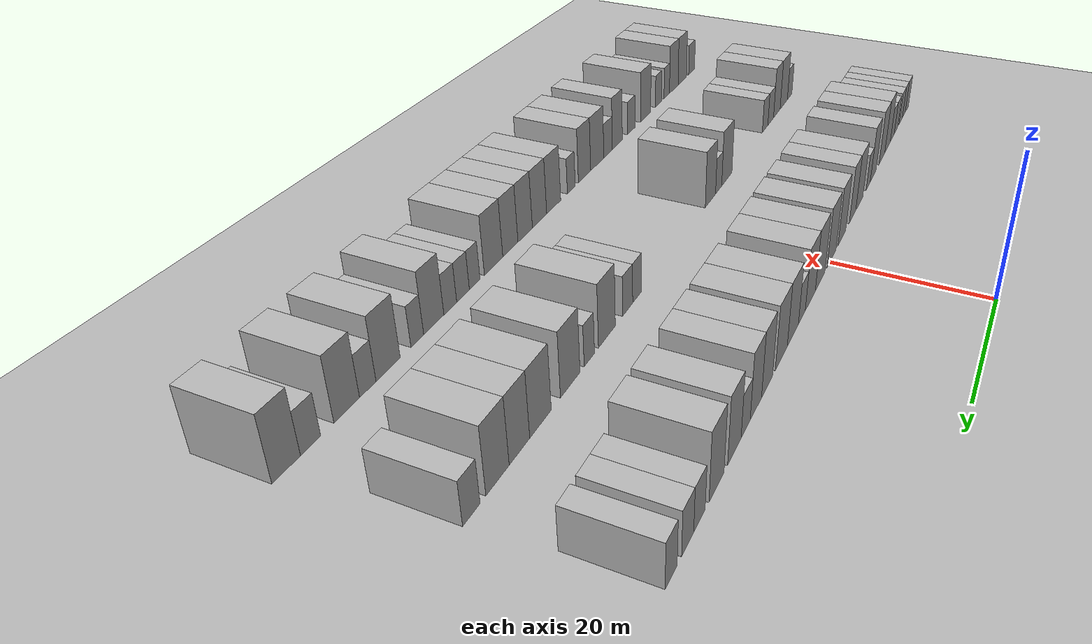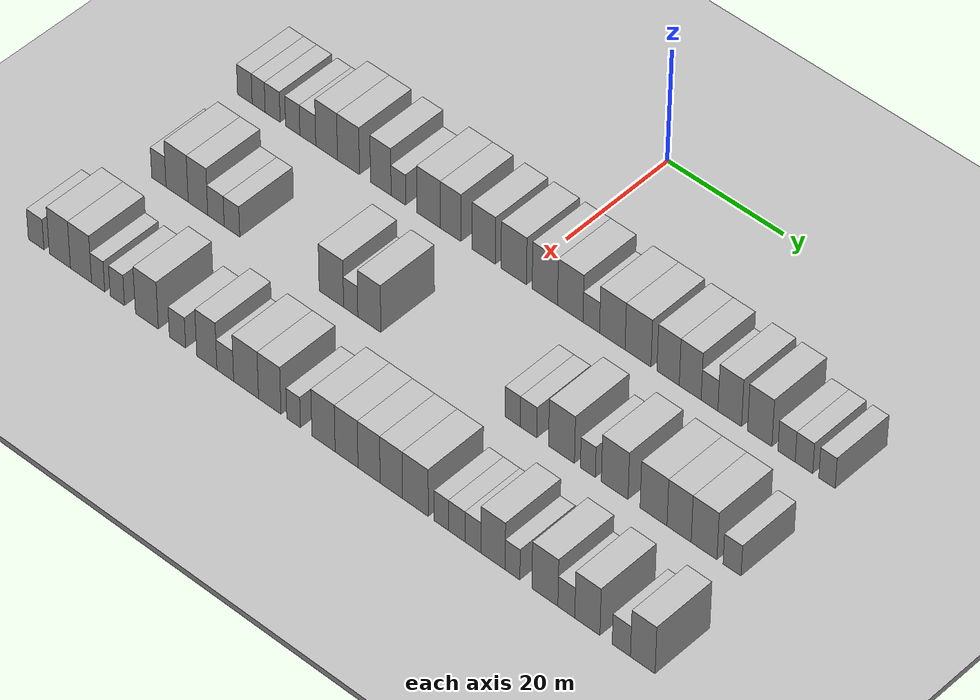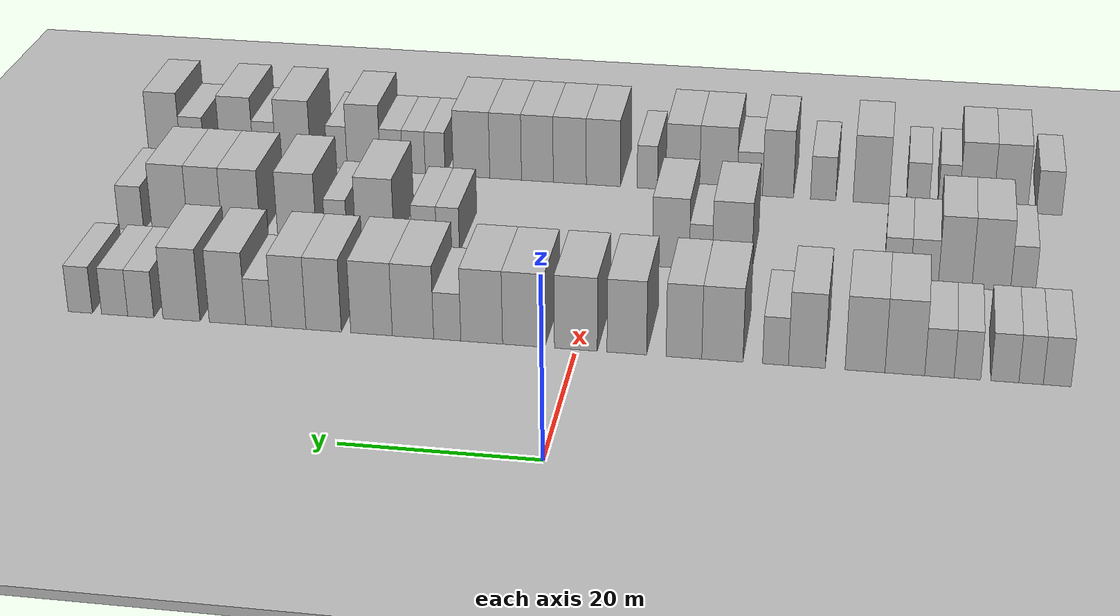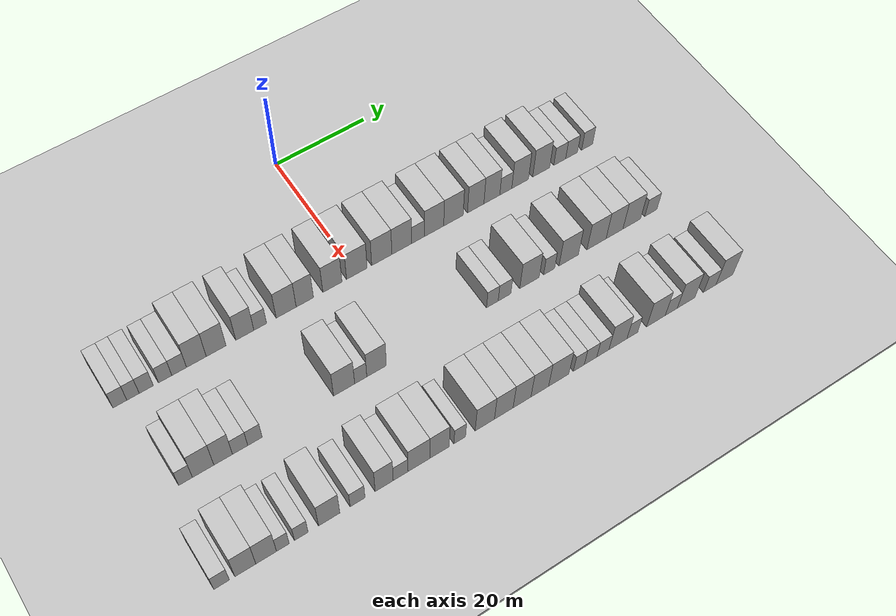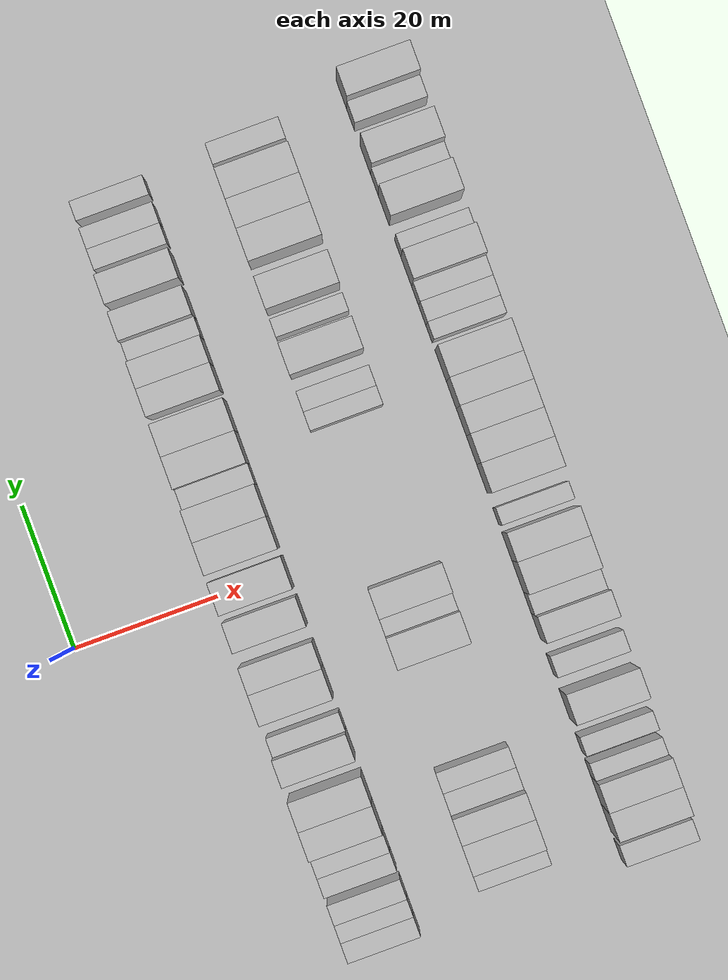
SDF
<sdf version="1.6">
 <world name="default">
  <include><name>ground_plane_1</name><uri>model://HANNAS_ground_plane</uri></include>
  <include>
   <name>ground_plane_2</name>
   <uri>model://HANNAS_ground_plane</uri>
   <pose>100 0 0  0 0 0</pose>
  </include>
  <model name="building_52">
   <static>1</static>
   <pose>25.0000 -48.6462 0 0.000000 0.000000 0.000000</pose>
   <link name="link">
    <pose>0 0 3.00 0 0 0</pose>
    <collision name="collision"><geometry><box><size>10.0000 2.7351 6.0000</size></box></geometry></collision>
    <visual name="visual">
     <cast_shadows>0</cast_shadows>
     <geometry><box><size>10.0000 2.7351 6.0000</size></box></geometry>
     <material>
      <script>
       <uri>model://HANNAS_wall/materials/scripts</uri>
       <uri>model://HANNAS_wall/materials/textures</uri>
       <name>vrc/HANNAS_wall</name>
      </script>
     </material>
    </visual>
   </link>
  </model>
  <model name="building_53">
   <static>1</static>
   <pose>25.0000 -46.0753 0 0.000000 0.000000 0.000000</pose>
   <link name="link">
    <pose>0 0 3.00 0 0 0</pose>
    <collision name="collision"><geometry><box><size>10.0000 2.4067 6.0000</size></box></geometry></collision>
    <visual name="visual">
     <cast_shadows>0</cast_shadows>
     <geometry><box><size>10.0000 2.4067 6.0000</size></box></geometry>
     <material>
      <script>
       <uri>model://HANNAS_wall/materials/scripts</uri>
       <uri>model://HANNAS_wall/materials/textures</uri>
       <name>vrc/HANNAS_wall</name>
      </script>
     </material>
    </visual>
   </link>
  </model>
  <model name="building_54">
   <static>1</static>
   <pose>25.0000 -43.4868 0 0.000000 0.000000 0.000000</pose>
   <link name="link">
    <pose>0 0 3.00 0 0 0</pose>
    <collision name="collision"><geometry><box><size>10.0000 2.7703 6.0000</size></box></geometry></collision>
    <visual name="visual">
     <cast_shadows>0</cast_shadows>
     <geometry><box><size>10.0000 2.7703 6.0000</size></box></geometry>
     <material>
      <script>
       <uri>model://HANNAS_wall/materials/scripts</uri>
       <uri>model://HANNAS_wall/materials/textures</uri>
       <name>vrc/HANNAS_wall</name>
      </script>
     </material>
    </visual>
   </link>
  </model>
  <model name="building_55">
   <static>1</static>
   <pose>25.0000 -39.7792 0 0.000000 0.000000 0.000000</pose>
   <link name="link">
    <pose>0 0 3.00 0 0 0</pose>
    <collision name="collision"><geometry><box><size>10.0000 2.6449 6.0000</size></box></geometry></collision>
    <visual name="visual">
     <cast_shadows>0</cast_shadows>
     <geometry><box><size>10.0000 2.6449 6.0000</size></box></geometry>
     <material>
      <script>
       <uri>model://HANNAS_wall/materials/scripts</uri>
       <uri>model://HANNAS_wall/materials/textures</uri>
       <name>vrc/HANNAS_wall</name>
      </script>
     </material>
    </visual>
   </link>
  </model>
  <model name="building_56">
   <static>1</static>
   <pose>25.0000 -36.9956 0 0.000000 0.000000 0.000000</pose>
   <link name="link">
    <pose>0 0 3.00 0 0 0</pose>
    <collision name="collision"><geometry><box><size>10.0000 2.9223 6.0000</size></box></geometry></collision>
    <visual name="visual">
     <cast_shadows>0</cast_shadows>
     <geometry><box><size>10.0000 2.9223 6.0000</size></box></geometry>
     <material>
      <script>
       <uri>model://HANNAS_wall/materials/scripts</uri>
       <uri>model://HANNAS_wall/materials/textures</uri>
       <name>vrc/HANNAS_wall</name>
      </script>
     </material>
    </visual>
   </link>
  </model>
  <model name="building_57">
   <static>1</static>
   <pose>25.0000 -33.5493 0 0.000000 0.000000 0.000000</pose>
   <link name="link">
    <pose>0 0 4.50 0 0 0</pose>
    <collision name="collision"><geometry><box><size>10.0000 3.9704 9.0000</size></box></geometry></collision>
    <visual name="visual">
     <cast_shadows>0</cast_shadows>
     <geometry><box><size>10.0000 3.9704 9.0000</size></box></geometry>
     <material>
      <script>
       <uri>model://HANNAS_wall/materials/scripts</uri>
       <uri>model://HANNAS_wall/materials/textures</uri>
       <name>vrc/HANNAS_wall</name>
      </script>
     </material>
    </visual>
   </link>
  </model>
  <model name="building_58">
   <static>1</static>
   <pose>25.0000 -29.5604 0 0.000000 0.000000 0.000000</pose>
   <link name="link">
    <pose>0 0 4.50 0 0 0</pose>
    <collision name="collision"><geometry><box><size>10.0000 4.0074 9.0000</size></box></geometry></collision>
    <visual name="visual">
     <cast_shadows>0</cast_shadows>
     <geometry><box><size>10.0000 4.0074 9.0000</size></box></geometry>
     <material>
      <script>
       <uri>model://HANNAS_wall/materials/scripts</uri>
       <uri>model://HANNAS_wall/materials/textures</uri>
       <name>vrc/HANNAS_wall</name>
      </script>
     </material>
    </visual>
   </link>
  </model>
  <model name="building_59">
   <static>1</static>
   <pose>25.0000 -23.6987 0 0.000000 0.000000 0.000000</pose>
   <link name="link">
    <pose>0 0 4.50 0 0 0</pose>
    <collision name="collision"><geometry><box><size>10.0000 3.7161 9.0000</size></box></geometry></collision>
    <visual name="visual">
     <cast_shadows>0</cast_shadows>
     <geometry><box><size>10.0000 3.7161 9.0000</size></box></geometry>
     <material>
      <script>
       <uri>model://HANNAS_wall/materials/scripts</uri>
       <uri>model://HANNAS_wall/materials/textures</uri>
       <name>vrc/HANNAS_wall</name>
      </script>
     </material>
    </visual>
   </link>
  </model>
  <model name="building_60">
   <static>1</static>
   <pose>25.0000 -20.5295 0 0.000000 0.000000 0.000000</pose>
   <link name="link">
    <pose>0 0 3.00 0 0 0</pose>
    <collision name="collision"><geometry><box><size>10.0000 2.6221 6.0000</size></box></geometry></collision>
    <visual name="visual">
     <cast_shadows>0</cast_shadows>
     <geometry><box><size>10.0000 2.6221 6.0000</size></box></geometry>
     <material>
      <script>
       <uri>model://HANNAS_wall/materials/scripts</uri>
       <uri>model://HANNAS_wall/materials/textures</uri>
       <name>vrc/HANNAS_wall</name>
      </script>
     </material>
    </visual>
   </link>
  </model>
  <model name="building_61">
   <static>1</static>
   <pose>25.0000 -15.1190 0 0.000000 0.000000 0.000000</pose>
   <link name="link">
    <pose>0 0 4.50 0 0 0</pose>
    <collision name="collision"><geometry><box><size>10.0000 4.1989 9.0000</size></box></geometry></collision>
    <visual name="visual">
     <cast_shadows>0</cast_shadows>
     <geometry><box><size>10.0000 4.1989 9.0000</size></box></geometry>
     <material>
      <script>
       <uri>model://HANNAS_wall/materials/scripts</uri>
       <uri>model://HANNAS_wall/materials/textures</uri>
       <name>vrc/HANNAS_wall</name>
      </script>
     </material>
    </visual>
   </link>
  </model>
  <model name="building_62">
   <static>1</static>
   <pose>25.0000 -11.1904 0 0.000000 0.000000 0.000000</pose>
   <link name="link">
    <pose>0 0 4.50 0 0 0</pose>
    <collision name="collision"><geometry><box><size>10.0000 3.6582 9.0000</size></box></geometry></collision>
    <visual name="visual">
     <cast_shadows>0</cast_shadows>
     <geometry><box><size>10.0000 3.6582 9.0000</size></box></geometry>
     <material>
      <script>
       <uri>model://HANNAS_wall/materials/scripts</uri>
       <uri>model://HANNAS_wall/materials/textures</uri>
       <name>vrc/HANNAS_wall</name>
      </script>
     </material>
    </visual>
   </link>
  </model>
  <model name="building_63">
   <static>1</static>
   <pose>25.0000 -5.3148 0 0.000000 0.000000 0.000000</pose>
   <link name="link">
    <pose>0 0 4.50 0 0 0</pose>
    <collision name="collision"><geometry><box><size>10.0000 4.0931 9.0000</size></box></geometry></collision>
    <visual name="visual">
     <cast_shadows>0</cast_shadows>
     <geometry><box><size>10.0000 4.0931 9.0000</size></box></geometry>
     <material>
      <script>
       <uri>model://HANNAS_wall/materials/scripts</uri>
       <uri>model://HANNAS_wall/materials/textures</uri>
       <name>vrc/HANNAS_wall</name>
      </script>
     </material>
    </visual>
   </link>
  </model>
  <model name="building_64">
   <static>1</static>
   <pose>25.0000 -0.0425 0 0.000000 0.000000 0.000000</pose>
   <link name="link">
    <pose>0 0 4.50 0 0 0</pose>
    <collision name="collision"><geometry><box><size>10.0000 4.4515 9.0000</size></box></geometry></collision>
    <visual name="visual">
     <cast_shadows>0</cast_shadows>
     <geometry><box><size>10.0000 4.4515 9.0000</size></box></geometry>
     <material>
      <script>
       <uri>model://HANNAS_wall/materials/scripts</uri>
       <uri>model://HANNAS_wall/materials/textures</uri>
       <name>vrc/HANNAS_wall</name>
      </script>
     </material>
    </visual>
   </link>
  </model>
  <model name="building_65">
   <static>1</static>
   <pose>25.0000 5.3926 0 0.000000 0.000000 0.000000</pose>
   <link name="link">
    <pose>0 0 4.50 0 0 0</pose>
    <collision name="collision"><geometry><box><size>10.0000 4.4188 9.0000</size></box></geometry></collision>
    <visual name="visual">
     <cast_shadows>0</cast_shadows>
     <geometry><box><size>10.0000 4.4188 9.0000</size></box></geometry>
     <material>
      <script>
       <uri>model://HANNAS_wall/materials/scripts</uri>
       <uri>model://HANNAS_wall/materials/textures</uri>
       <name>vrc/HANNAS_wall</name>
      </script>
     </material>
    </visual>
   </link>
  </model>
  <model name="building_66">
   <static>1</static>
   <pose>25.0000 9.7948 0 0.000000 0.000000 0.000000</pose>
   <link name="link">
    <pose>0 0 4.50 0 0 0</pose>
    <collision name="collision"><geometry><box><size>10.0000 4.3856 9.0000</size></box></geometry></collision>
    <visual name="visual">
     <cast_shadows>0</cast_shadows>
     <geometry><box><size>10.0000 4.3856 9.0000</size></box></geometry>
     <material>
      <script>
       <uri>model://HANNAS_wall/materials/scripts</uri>
       <uri>model://HANNAS_wall/materials/textures</uri>
       <name>vrc/HANNAS_wall</name>
      </script>
     </material>
    </visual>
   </link>
  </model>
  <model name="building_67">
   <static>1</static>
   <pose>25.0000 13.4196 0 0.000000 0.000000 0.000000</pose>
   <link name="link">
    <pose>0 0 3.00 0 0 0</pose>
    <collision name="collision"><geometry><box><size>10.0000 2.8640 6.0000</size></box></geometry></collision>
    <visual name="visual">
     <cast_shadows>0</cast_shadows>
     <geometry><box><size>10.0000 2.8640 6.0000</size></box></geometry>
     <material>
      <script>
       <uri>model://HANNAS_wall/materials/scripts</uri>
       <uri>model://HANNAS_wall/materials/textures</uri>
       <name>vrc/HANNAS_wall</name>
      </script>
     </material>
    </visual>
   </link>
  </model>
  <model name="building_68">
   <static>1</static>
   <pose>25.0000 17.0380 0 0.000000 0.000000 0.000000</pose>
   <link name="link">
    <pose>0 0 4.50 0 0 0</pose>
    <collision name="collision"><geometry><box><size>10.0000 4.3727 9.0000</size></box></geometry></collision>
    <visual name="visual">
     <cast_shadows>0</cast_shadows>
     <geometry><box><size>10.0000 4.3727 9.0000</size></box></geometry>
     <material>
      <script>
       <uri>model://HANNAS_wall/materials/scripts</uri>
       <uri>model://HANNAS_wall/materials/textures</uri>
       <name>vrc/HANNAS_wall</name>
      </script>
     </material>
    </visual>
   </link>
  </model>
  <model name="building_69">
   <static>1</static>
   <pose>25.0000 21.4392 0 0.000000 0.000000 0.000000</pose>
   <link name="link">
    <pose>0 0 4.50 0 0 0</pose>
    <collision name="collision"><geometry><box><size>10.0000 4.4298 9.0000</size></box></geometry></collision>
    <visual name="visual">
     <cast_shadows>0</cast_shadows>
     <geometry><box><size>10.0000 4.4298 9.0000</size></box></geometry>
     <material>
      <script>
       <uri>model://HANNAS_wall/materials/scripts</uri>
       <uri>model://HANNAS_wall/materials/textures</uri>
       <name>vrc/HANNAS_wall</name>
      </script>
     </material>
    </visual>
   </link>
  </model>
  <model name="building_70">
   <static>1</static>
   <pose>25.0000 26.5454 0 0.000000 0.000000 0.000000</pose>
   <link name="link">
    <pose>0 0 4.50 0 0 0</pose>
    <collision name="collision"><geometry><box><size>10.0000 3.7825 9.0000</size></box></geometry></collision>
    <visual name="visual">
     <cast_shadows>0</cast_shadows>
     <geometry><box><size>10.0000 3.7825 9.0000</size></box></geometry>
     <material>
      <script>
       <uri>model://HANNAS_wall/materials/scripts</uri>
       <uri>model://HANNAS_wall/materials/textures</uri>
       <name>vrc/HANNAS_wall</name>
      </script>
     </material>
    </visual>
   </link>
  </model>
  <model name="building_71">
   <static>1</static>
   <pose>25.0000 30.2810 0 0.000000 0.000000 0.000000</pose>
   <link name="link">
    <pose>0 0 4.50 0 0 0</pose>
    <collision name="collision"><geometry><box><size>10.0000 3.6888 9.0000</size></box></geometry></collision>
    <visual name="visual">
     <cast_shadows>0</cast_shadows>
     <geometry><box><size>10.0000 3.6888 9.0000</size></box></geometry>
     <material>
      <script>
       <uri>model://HANNAS_wall/materials/scripts</uri>
       <uri>model://HANNAS_wall/materials/textures</uri>
       <name>vrc/HANNAS_wall</name>
      </script>
     </material>
    </visual>
   </link>
  </model>
  <model name="building_72">
   <static>1</static>
   <pose>25.0000 33.5298 0 0.000000 0.000000 0.000000</pose>
   <link name="link">
    <pose>0 0 3.00 0 0 0</pose>
    <collision name="collision"><geometry><box><size>10.0000 2.8089 6.0000</size></box></geometry></collision>
    <visual name="visual">
     <cast_shadows>0</cast_shadows>
     <geometry><box><size>10.0000 2.8089 6.0000</size></box></geometry>
     <material>
      <script>
       <uri>model://HANNAS_wall/materials/scripts</uri>
       <uri>model://HANNAS_wall/materials/textures</uri>
       <name>vrc/HANNAS_wall</name>
      </script>
     </material>
    </visual>
   </link>
  </model>
  <model name="building_73">
   <static>1</static>
   <pose>25.0000 36.9050 0 0.000000 0.000000 0.000000</pose>
   <link name="link">
    <pose>0 0 4.50 0 0 0</pose>
    <collision name="collision"><geometry><box><size>10.0000 3.9414 9.0000</size></box></geometry></collision>
    <visual name="visual">
     <cast_shadows>0</cast_shadows>
     <geometry><box><size>10.0000 3.9414 9.0000</size></box></geometry>
     <material>
      <script>
       <uri>model://HANNAS_wall/materials/scripts</uri>
       <uri>model://HANNAS_wall/materials/textures</uri>
       <name>vrc/HANNAS_wall</name>
      </script>
     </material>
    </visual>
   </link>
  </model>
  <model name="building_74">
   <static>1</static>
   <pose>25.0000 41.8972 0 0.000000 0.000000 0.000000</pose>
   <link name="link">
    <pose>0 0 4.50 0 0 0</pose>
    <collision name="collision"><geometry><box><size>10.0000 4.0429 9.0000</size></box></geometry></collision>
    <visual name="visual">
     <cast_shadows>0</cast_shadows>
     <geometry><box><size>10.0000 4.0429 9.0000</size></box></geometry>
     <material>
      <script>
       <uri>model://HANNAS_wall/materials/scripts</uri>
       <uri>model://HANNAS_wall/materials/textures</uri>
       <name>vrc/HANNAS_wall</name>
      </script>
     </material>
    </visual>
   </link>
  </model>
  <model name="building_75">
   <static>1</static>
   <pose>25.0000 46.3423 0 0.000000 0.000000 0.000000</pose>
   <link name="link">
    <pose>0 0 3.00 0 0 0</pose>
    <collision name="collision"><geometry><box><size>10.0000 2.8474 6.0000</size></box></geometry></collision>
    <visual name="visual">
     <cast_shadows>0</cast_shadows>
     <geometry><box><size>10.0000 2.8474 6.0000</size></box></geometry>
     <material>
      <script>
       <uri>model://HANNAS_wall/materials/scripts</uri>
       <uri>model://HANNAS_wall/materials/textures</uri>
       <name>vrc/HANNAS_wall</name>
      </script>
     </material>
    </visual>
   </link>
  </model>
  <model name="building_76">
   <static>1</static>
   <pose>25.0000 49.2047 0 0.000000 0.000000 0.000000</pose>
   <link name="link">
    <pose>0 0 3.00 0 0 0</pose>
    <collision name="collision"><geometry><box><size>10.0000 2.8776 6.0000</size></box></geometry></collision>
    <visual name="visual">
     <cast_shadows>0</cast_shadows>
     <geometry><box><size>10.0000 2.8776 6.0000</size></box></geometry>
     <material>
      <script>
       <uri>model://HANNAS_wall/materials/scripts</uri>
       <uri>model://HANNAS_wall/materials/textures</uri>
       <name>vrc/HANNAS_wall</name>
      </script>
     </material>
    </visual>
   </link>
  </model>
  <model name="building_77">
   <static>1</static>
   <pose>25.0000 52.9782 0 0.000000 0.000000 0.000000</pose>
   <link name="link">
    <pose>0 0 3.00 0 0 0</pose>
    <collision name="collision"><geometry><box><size>10.0000 2.6694 6.0000</size></box></geometry></collision>
    <visual name="visual">
     <cast_shadows>0</cast_shadows>
     <geometry><box><size>10.0000 2.6694 6.0000</size></box></geometry>
     <material>
      <script>
       <uri>model://HANNAS_wall/materials/scripts</uri>
       <uri>model://HANNAS_wall/materials/textures</uri>
       <name>vrc/HANNAS_wall</name>
      </script>
     </material>
    </visual>
   </link>
  </model>
  <model name="building_170">
   <static>1</static>
   <pose>44.0000 -45.7778 0 0.000000 0.000000 0.000000</pose>
   <link name="link">
    <pose>0 0 3.00 0 0 0</pose>
    <collision name="collision"><geometry><box><size>10.0000 2.6473 6.0000</size></box></geometry></collision>
    <visual name="visual">
     <cast_shadows>0</cast_shadows>
     <geometry><box><size>10.0000 2.6473 6.0000</size></box></geometry>
     <material>
      <script>
       <uri>model://HANNAS_wall/materials/scripts</uri>
       <uri>model://HANNAS_wall/materials/textures</uri>
       <name>vrc/HANNAS_wall</name>
      </script>
     </material>
    </visual>
   </link>
  </model>
  <model name="building_171">
   <static>1</static>
   <pose>44.0000 -42.3983 0 0.000000 0.000000 0.000000</pose>
   <link name="link">
    <pose>0 0 4.50 0 0 0</pose>
    <collision name="collision"><geometry><box><size>10.0000 4.1117 9.0000</size></box></geometry></collision>
    <visual name="visual">
     <cast_shadows>0</cast_shadows>
     <geometry><box><size>10.0000 4.1117 9.0000</size></box></geometry>
     <material>
      <script>
       <uri>model://HANNAS_wall/materials/scripts</uri>
       <uri>model://HANNAS_wall/materials/textures</uri>
       <name>vrc/HANNAS_wall</name>
      </script>
     </material>
    </visual>
   </link>
  </model>
  <model name="building_172">
   <static>1</static>
   <pose>44.0000 -38.5413 0 0.000000 0.000000 0.000000</pose>
   <link name="link">
    <pose>0 0 4.50 0 0 0</pose>
    <collision name="collision"><geometry><box><size>10.0000 3.6022 9.0000</size></box></geometry></collision>
    <visual name="visual">
     <cast_shadows>0</cast_shadows>
     <geometry><box><size>10.0000 3.6022 9.0000</size></box></geometry>
     <material>
      <script>
       <uri>model://HANNAS_wall/materials/scripts</uri>
       <uri>model://HANNAS_wall/materials/textures</uri>
       <name>vrc/HANNAS_wall</name>
      </script>
     </material>
    </visual>
   </link>
  </model>
  <model name="building_173">
   <static>1</static>
   <pose>44.0000 -35.2444 0 0.000000 0.000000 0.000000</pose>
   <link name="link">
    <pose>0 0 3.00 0 0 0</pose>
    <collision name="collision"><geometry><box><size>10.0000 2.9916 6.0000</size></box></geometry></collision>
    <visual name="visual">
     <cast_shadows>0</cast_shadows>
     <geometry><box><size>10.0000 2.9916 6.0000</size></box></geometry>
     <material>
      <script>
       <uri>model://HANNAS_wall/materials/scripts</uri>
       <uri>model://HANNAS_wall/materials/textures</uri>
       <name>vrc/HANNAS_wall</name>
      </script>
     </material>
    </visual>
   </link>
  </model>
  <model name="building_174">
   <static>1</static>
   <pose>44.0000 -32.3224 0 0.000000 0.000000 0.000000</pose>
   <link name="link">
    <pose>0 0 3.00 0 0 0</pose>
    <collision name="collision"><geometry><box><size>10.0000 2.8525 6.0000</size></box></geometry></collision>
    <visual name="visual">
     <cast_shadows>0</cast_shadows>
     <geometry><box><size>10.0000 2.8525 6.0000</size></box></geometry>
     <material>
      <script>
       <uri>model://HANNAS_wall/materials/scripts</uri>
       <uri>model://HANNAS_wall/materials/textures</uri>
       <name>vrc/HANNAS_wall</name>
      </script>
     </material>
    </visual>
   </link>
  </model>
  <model name="building_175">
   <static>1</static>
   <pose>44.0000 -14.3872 0 0.000000 0.000000 0.000000</pose>
   <link name="link">
    <pose>0 0 4.50 0 0 0</pose>
    <collision name="collision"><geometry><box><size>10.0000 4.3393 9.0000</size></box></geometry></collision>
    <visual name="visual">
     <cast_shadows>0</cast_shadows>
     <geometry><box><size>10.0000 4.3393 9.0000</size></box></geometry>
     <material>
      <script>
       <uri>model://HANNAS_wall/materials/scripts</uri>
       <uri>model://HANNAS_wall/materials/textures</uri>
       <name>vrc/HANNAS_wall</name>
      </script>
     </material>
    </visual>
   </link>
  </model>
  <model name="building_176">
   <static>1</static>
   <pose>44.0000 -10.9563 0 0.000000 0.000000 0.000000</pose>
   <link name="link">
    <pose>0 0 3.00 0 0 0</pose>
    <collision name="collision"><geometry><box><size>10.0000 2.5224 6.0000</size></box></geometry></collision>
    <visual name="visual">
     <cast_shadows>0</cast_shadows>
     <geometry><box><size>10.0000 2.5224 6.0000</size></box></geometry>
     <material>
      <script>
       <uri>model://HANNAS_wall/materials/scripts</uri>
       <uri>model://HANNAS_wall/materials/textures</uri>
       <name>vrc/HANNAS_wall</name>
      </script>
     </material>
    </visual>
   </link>
  </model>
  <model name="building_177">
   <static>1</static>
   <pose>44.0000 -7.6598 0 0.000000 0.000000 0.000000</pose>
   <link name="link">
    <pose>0 0 4.50 0 0 0</pose>
    <collision name="collision"><geometry><box><size>10.0000 4.0707 9.0000</size></box></geometry></collision>
    <visual name="visual">
     <cast_shadows>0</cast_shadows>
     <geometry><box><size>10.0000 4.0707 9.0000</size></box></geometry>
     <material>
      <script>
       <uri>model://HANNAS_wall/materials/scripts</uri>
       <uri>model://HANNAS_wall/materials/textures</uri>
       <name>vrc/HANNAS_wall</name>
      </script>
     </material>
    </visual>
   </link>
  </model>
  <model name="building_178">
   <static>1</static>
   <pose>44.0000 17.2535 0 0.000000 0.000000 0.000000</pose>
   <link name="link">
    <pose>0 0 3.00 0 0 0</pose>
    <collision name="collision"><geometry><box><size>10.0000 2.5852 6.0000</size></box></geometry></collision>
    <visual name="visual">
     <cast_shadows>0</cast_shadows>
     <geometry><box><size>10.0000 2.5852 6.0000</size></box></geometry>
     <material>
      <script>
       <uri>model://HANNAS_wall/materials/scripts</uri>
       <uri>model://HANNAS_wall/materials/textures</uri>
       <name>vrc/HANNAS_wall</name>
      </script>
     </material>
    </visual>
   </link>
  </model>
  <model name="building_179">
   <static>1</static>
   <pose>44.0000 19.9597 0 0.000000 0.000000 0.000000</pose>
   <link name="link">
    <pose>0 0 3.00 0 0 0</pose>
    <collision name="collision"><geometry><box><size>10.0000 2.8272 6.0000</size></box></geometry></collision>
    <visual name="visual">
     <cast_shadows>0</cast_shadows>
     <geometry><box><size>10.0000 2.8272 6.0000</size></box></geometry>
     <material>
      <script>
       <uri>model://HANNAS_wall/materials/scripts</uri>
       <uri>model://HANNAS_wall/materials/textures</uri>
       <name>vrc/HANNAS_wall</name>
      </script>
     </material>
    </visual>
   </link>
  </model>
  <model name="building_180">
   <static>1</static>
   <pose>44.0000 25.5648 0 0.000000 0.000000 0.000000</pose>
   <link name="link">
    <pose>0 0 4.50 0 0 0</pose>
    <collision name="collision"><geometry><box><size>10.0000 4.3829 9.0000</size></box></geometry></collision>
    <visual name="visual">
     <cast_shadows>0</cast_shadows>
     <geometry><box><size>10.0000 4.3829 9.0000</size></box></geometry>
     <material>
      <script>
       <uri>model://HANNAS_wall/materials/scripts</uri>
       <uri>model://HANNAS_wall/materials/textures</uri>
       <name>vrc/HANNAS_wall</name>
      </script>
     </material>
    </visual>
   </link>
  </model>
  <model name="building_181">
   <static>1</static>
   <pose>44.0000 30.0153 0 0.000000 0.000000 0.000000</pose>
   <link name="link">
    <pose>0 0 3.00 0 0 0</pose>
    <collision name="collision"><geometry><box><size>10.0000 2.5182 6.0000</size></box></geometry></collision>
    <visual name="visual">
     <cast_shadows>0</cast_shadows>
     <geometry><box><size>10.0000 2.5182 6.0000</size></box></geometry>
     <material>
      <script>
       <uri>model://HANNAS_wall/materials/scripts</uri>
       <uri>model://HANNAS_wall/materials/textures</uri>
       <name>vrc/HANNAS_wall</name>
      </script>
     </material>
    </visual>
   </link>
  </model>
  <model name="building_182">
   <static>1</static>
   <pose>44.0000 34.5083 0 0.000000 0.000000 0.000000</pose>
   <link name="link">
    <pose>0 0 4.50 0 0 0</pose>
    <collision name="collision"><geometry><box><size>10.0000 4.4677 9.0000</size></box></geometry></collision>
    <visual name="visual">
     <cast_shadows>0</cast_shadows>
     <geometry><box><size>10.0000 4.4677 9.0000</size></box></geometry>
     <material>
      <script>
       <uri>model://HANNAS_wall/materials/scripts</uri>
       <uri>model://HANNAS_wall/materials/textures</uri>
       <name>vrc/HANNAS_wall</name>
      </script>
     </material>
    </visual>
   </link>
  </model>
  <model name="building_183">
   <static>1</static>
   <pose>44.0000 40.9732 0 0.000000 0.000000 0.000000</pose>
   <link name="link">
    <pose>0 0 4.50 0 0 0</pose>
    <collision name="collision"><geometry><box><size>10.0000 4.4620 9.0000</size></box></geometry></collision>
    <visual name="visual">
     <cast_shadows>0</cast_shadows>
     <geometry><box><size>10.0000 4.4620 9.0000</size></box></geometry>
     <material>
      <script>
       <uri>model://HANNAS_wall/materials/scripts</uri>
       <uri>model://HANNAS_wall/materials/textures</uri>
       <name>vrc/HANNAS_wall</name>
      </script>
     </material>
    </visual>
   </link>
  </model>
  <model name="building_184">
   <static>1</static>
   <pose>44.0000 45.1944 0 0.000000 0.000000 0.000000</pose>
   <link name="link">
    <pose>0 0 4.50 0 0 0</pose>
    <collision name="collision"><geometry><box><size>10.0000 3.9804 9.0000</size></box></geometry></collision>
    <visual name="visual">
     <cast_shadows>0</cast_shadows>
     <geometry><box><size>10.0000 3.9804 9.0000</size></box></geometry>
     <material>
      <script>
       <uri>model://HANNAS_wall/materials/scripts</uri>
       <uri>model://HANNAS_wall/materials/textures</uri>
       <name>vrc/HANNAS_wall</name>
      </script>
     </material>
    </visual>
   </link>
  </model>
  <model name="building_185">
   <static>1</static>
   <pose>44.0000 49.2957 0 0.000000 0.000000 0.000000</pose>
   <link name="link">
    <pose>0 0 4.50 0 0 0</pose>
    <collision name="collision"><geometry><box><size>10.0000 4.2222 9.0000</size></box></geometry></collision>
    <visual name="visual">
     <cast_shadows>0</cast_shadows>
     <geometry><box><size>10.0000 4.2222 9.0000</size></box></geometry>
     <material>
      <script>
       <uri>model://HANNAS_wall/materials/scripts</uri>
       <uri>model://HANNAS_wall/materials/textures</uri>
       <name>vrc/HANNAS_wall</name>
      </script>
     </material>
    </visual>
   </link>
  </model>
  <model name="building_186">
   <static>1</static>
   <pose>44.0000 53.8713 0 0.000000 0.000000 0.000000</pose>
   <link name="link">
    <pose>0 0 3.00 0 0 0</pose>
    <collision name="collision"><geometry><box><size>10.0000 2.9292 6.0000</size></box></geometry></collision>
    <visual name="visual">
     <cast_shadows>0</cast_shadows>
     <geometry><box><size>10.0000 2.9292 6.0000</size></box></geometry>
     <material>
      <script>
       <uri>model://HANNAS_wall/materials/scripts</uri>
       <uri>model://HANNAS_wall/materials/textures</uri>
       <name>vrc/HANNAS_wall</name>
      </script>
     </material>
    </visual>
   </link>
  </model>
  <model name="building_277">
   <static>1</static>
   <pose>63.0000 -49.2333 0 0.000000 0.000000 0.000000</pose>
   <link name="link">
    <pose>0 0 3.00 0 0 0</pose>
    <collision name="collision"><geometry><box><size>10.0000 2.9017 6.0000</size></box></geometry></collision>
    <visual name="visual">
     <cast_shadows>0</cast_shadows>
     <geometry><box><size>10.0000 2.9017 6.0000</size></box></geometry>
     <material>
      <script>
       <uri>model://HANNAS_wall/materials/scripts</uri>
       <uri>model://HANNAS_wall/materials/textures</uri>
       <name>vrc/HANNAS_wall</name>
      </script>
     </material>
    </visual>
   </link>
  </model>
  <model name="building_278">
   <static>1</static>
   <pose>63.0000 -44.8301 0 0.000000 0.000000 0.000000</pose>
   <link name="link">
    <pose>0 0 4.50 0 0 0</pose>
    <collision name="collision"><geometry><box><size>10.0000 3.9046 9.0000</size></box></geometry></collision>
    <visual name="visual">
     <cast_shadows>0</cast_shadows>
     <geometry><box><size>10.0000 3.9046 9.0000</size></box></geometry>
     <material>
      <script>
       <uri>model://HANNAS_wall/materials/scripts</uri>
       <uri>model://HANNAS_wall/materials/textures</uri>
       <name>vrc/HANNAS_wall</name>
      </script>
     </material>
    </visual>
   </link>
  </model>
  <model name="building_279">
   <static>1</static>
   <pose>63.0000 -40.9278 0 0.000000 0.000000 0.000000</pose>
   <link name="link">
    <pose>0 0 4.50 0 0 0</pose>
    <collision name="collision"><geometry><box><size>10.0000 3.9001 9.0000</size></box></geometry></collision>
    <visual name="visual">
     <cast_shadows>0</cast_shadows>
     <geometry><box><size>10.0000 3.9001 9.0000</size></box></geometry>
     <material>
      <script>
       <uri>model://HANNAS_wall/materials/scripts</uri>
       <uri>model://HANNAS_wall/materials/textures</uri>
       <name>vrc/HANNAS_wall</name>
      </script>
     </material>
    </visual>
   </link>
  </model>
  <model name="building_280">
   <static>1</static>
   <pose>63.0000 -37.7716 0 0.000000 0.000000 0.000000</pose>
   <link name="link">
    <pose>0 0 3.00 0 0 0</pose>
    <collision name="collision"><geometry><box><size>10.0000 2.4122 6.0000</size></box></geometry></collision>
    <visual name="visual">
     <cast_shadows>0</cast_shadows>
     <geometry><box><size>10.0000 2.4122 6.0000</size></box></geometry>
     <material>
      <script>
       <uri>model://HANNAS_wall/materials/scripts</uri>
       <uri>model://HANNAS_wall/materials/textures</uri>
       <name>vrc/HANNAS_wall</name>
      </script>
     </material>
    </visual>
   </link>
  </model>
  <model name="building_281">
   <static>1</static>
   <pose>63.0000 -34.2584 0 0.000000 0.000000 0.000000</pose>
   <link name="link">
    <pose>0 0 3.00 0 0 0</pose>
    <collision name="collision"><geometry><box><size>10.0000 2.6142 6.0000</size></box></geometry></collision>
    <visual name="visual">
     <cast_shadows>0</cast_shadows>
     <geometry><box><size>10.0000 2.6142 6.0000</size></box></geometry>
     <material>
      <script>
       <uri>model://HANNAS_wall/materials/scripts</uri>
       <uri>model://HANNAS_wall/materials/textures</uri>
       <name>vrc/HANNAS_wall</name>
      </script>
     </material>
    </visual>
   </link>
  </model>
  <model name="building_282">
   <static>1</static>
   <pose>63.0000 -28.8769 0 0.000000 0.000000 0.000000</pose>
   <link name="link">
    <pose>0 0 4.50 0 0 0</pose>
    <collision name="collision"><geometry><box><size>10.0000 4.1487 9.0000</size></box></geometry></collision>
    <visual name="visual">
     <cast_shadows>0</cast_shadows>
     <geometry><box><size>10.0000 4.1487 9.0000</size></box></geometry>
     <material>
      <script>
       <uri>model://HANNAS_wall/materials/scripts</uri>
       <uri>model://HANNAS_wall/materials/textures</uri>
       <name>vrc/HANNAS_wall</name>
      </script>
     </material>
    </visual>
   </link>
  </model>
  <model name="building_283">
   <static>1</static>
   <pose>63.0000 -23.3368 0 0.000000 0.000000 0.000000</pose>
   <link name="link">
    <pose>0 0 3.00 0 0 0</pose>
    <collision name="collision"><geometry><box><size>10.0000 2.9317 6.0000</size></box></geometry></collision>
    <visual name="visual">
     <cast_shadows>0</cast_shadows>
     <geometry><box><size>10.0000 2.9317 6.0000</size></box></geometry>
     <material>
      <script>
       <uri>model://HANNAS_wall/materials/scripts</uri>
       <uri>model://HANNAS_wall/materials/textures</uri>
       <name>vrc/HANNAS_wall</name>
      </script>
     </material>
    </visual>
   </link>
  </model>
  <model name="building_284">
   <static>1</static>
   <pose>63.0000 -18.0691 0 0.000000 0.000000 0.000000</pose>
   <link name="link">
    <pose>0 0 4.50 0 0 0</pose>
    <collision name="collision"><geometry><box><size>10.0000 3.6036 9.0000</size></box></geometry></collision>
    <visual name="visual">
     <cast_shadows>0</cast_shadows>
     <geometry><box><size>10.0000 3.6036 9.0000</size></box></geometry>
     <material>
      <script>
       <uri>model://HANNAS_wall/materials/scripts</uri>
       <uri>model://HANNAS_wall/materials/textures</uri>
       <name>vrc/HANNAS_wall</name>
      </script>
     </material>
    </visual>
   </link>
  </model>
  <model name="building_285">
   <static>1</static>
   <pose>63.0000 -14.7744 0 0.000000 0.000000 0.000000</pose>
   <link name="link">
    <pose>0 0 3.00 0 0 0</pose>
    <collision name="collision"><geometry><box><size>10.0000 2.9859 6.0000</size></box></geometry></collision>
    <visual name="visual">
     <cast_shadows>0</cast_shadows>
     <geometry><box><size>10.0000 2.9859 6.0000</size></box></geometry>
     <material>
      <script>
       <uri>model://HANNAS_wall/materials/scripts</uri>
       <uri>model://HANNAS_wall/materials/textures</uri>
       <name>vrc/HANNAS_wall</name>
      </script>
     </material>
    </visual>
   </link>
  </model>
  <model name="building_286">
   <static>1</static>
   <pose>63.0000 -11.0780 0 0.000000 0.000000 0.000000</pose>
   <link name="link">
    <pose>0 0 4.50 0 0 0</pose>
    <collision name="collision"><geometry><box><size>10.0000 4.4069 9.0000</size></box></geometry></collision>
    <visual name="visual">
     <cast_shadows>0</cast_shadows>
     <geometry><box><size>10.0000 4.4069 9.0000</size></box></geometry>
     <material>
      <script>
       <uri>model://HANNAS_wall/materials/scripts</uri>
       <uri>model://HANNAS_wall/materials/textures</uri>
       <name>vrc/HANNAS_wall</name>
      </script>
     </material>
    </visual>
   </link>
  </model>
  <model name="building_287">
   <static>1</static>
   <pose>63.0000 -6.8923 0 0.000000 0.000000 0.000000</pose>
   <link name="link">
    <pose>0 0 4.50 0 0 0</pose>
    <collision name="collision"><geometry><box><size>10.0000 3.9645 9.0000</size></box></geometry></collision>
    <visual name="visual">
     <cast_shadows>0</cast_shadows>
     <geometry><box><size>10.0000 3.9645 9.0000</size></box></geometry>
     <material>
      <script>
       <uri>model://HANNAS_wall/materials/scripts</uri>
       <uri>model://HANNAS_wall/materials/textures</uri>
       <name>vrc/HANNAS_wall</name>
      </script>
     </material>
    </visual>
   </link>
  </model>
  <model name="building_288">
   <static>1</static>
   <pose>63.0000 -2.7074 0 0.000000 0.000000 0.000000</pose>
   <link name="link">
    <pose>0 0 3.00 0 0 0</pose>
    <collision name="collision"><geometry><box><size>10.0000 2.4053 6.0000</size></box></geometry></collision>
    <visual name="visual">
     <cast_shadows>0</cast_shadows>
     <geometry><box><size>10.0000 2.4053 6.0000</size></box></geometry>
     <material>
      <script>
       <uri>model://HANNAS_wall/materials/scripts</uri>
       <uri>model://HANNAS_wall/materials/textures</uri>
       <name>vrc/HANNAS_wall</name>
      </script>
     </material>
    </visual>
   </link>
  </model>
  <model name="building_289">
   <static>1</static>
   <pose>63.0000 2.5226 0 0.000000 0.000000 0.000000</pose>
   <link name="link">
    <pose>0 0 4.50 0 0 0</pose>
    <collision name="collision"><geometry><box><size>10.0000 4.0547 9.0000</size></box></geometry></collision>
    <visual name="visual">
     <cast_shadows>0</cast_shadows>
     <geometry><box><size>10.0000 4.0547 9.0000</size></box></geometry>
     <material>
      <script>
       <uri>model://HANNAS_wall/materials/scripts</uri>
       <uri>model://HANNAS_wall/materials/textures</uri>
       <name>vrc/HANNAS_wall</name>
      </script>
     </material>
    </visual>
   </link>
  </model>
  <model name="building_290">
   <static>1</static>
   <pose>63.0000 6.5239 0 0.000000 0.000000 0.000000</pose>
   <link name="link">
    <pose>0 0 4.50 0 0 0</pose>
    <collision name="collision"><geometry><box><size>10.0000 3.9479 9.0000</size></box></geometry></collision>
    <visual name="visual">
     <cast_shadows>0</cast_shadows>
     <geometry><box><size>10.0000 3.9479 9.0000</size></box></geometry>
     <material>
      <script>
       <uri>model://HANNAS_wall/materials/scripts</uri>
       <uri>model://HANNAS_wall/materials/textures</uri>
       <name>vrc/HANNAS_wall</name>
      </script>
     </material>
    </visual>
   </link>
  </model>
  <model name="building_291">
   <static>1</static>
   <pose>63.0000 10.4068 0 0.000000 0.000000 0.000000</pose>
   <link name="link">
    <pose>0 0 4.50 0 0 0</pose>
    <collision name="collision"><geometry><box><size>10.0000 3.8179 9.0000</size></box></geometry></collision>
    <visual name="visual">
     <cast_shadows>0</cast_shadows>
     <geometry><box><size>10.0000 3.8179 9.0000</size></box></geometry>
     <material>
      <script>
       <uri>model://HANNAS_wall/materials/scripts</uri>
       <uri>model://HANNAS_wall/materials/textures</uri>
       <name>vrc/HANNAS_wall</name>
      </script>
     </material>
    </visual>
   </link>
  </model>
  <model name="building_292">
   <static>1</static>
   <pose>63.0000 14.2258 0 0.000000 0.000000 0.000000</pose>
   <link name="link">
    <pose>0 0 4.50 0 0 0</pose>
    <collision name="collision"><geometry><box><size>10.0000 3.8200 9.0000</size></box></geometry></collision>
    <visual name="visual">
     <cast_shadows>0</cast_shadows>
     <geometry><box><size>10.0000 3.8200 9.0000</size></box></geometry>
     <material>
      <script>
       <uri>model://HANNAS_wall/materials/scripts</uri>
       <uri>model://HANNAS_wall/materials/textures</uri>
       <name>vrc/HANNAS_wall</name>
      </script>
     </material>
    </visual>
   </link>
  </model>
  <model name="building_293">
   <static>1</static>
   <pose>63.0000 18.3408 0 0.000000 0.000000 0.000000</pose>
   <link name="link">
    <pose>0 0 4.50 0 0 0</pose>
    <collision name="collision"><geometry><box><size>10.0000 4.4100 9.0000</size></box></geometry></collision>
    <visual name="visual">
     <cast_shadows>0</cast_shadows>
     <geometry><box><size>10.0000 4.4100 9.0000</size></box></geometry>
     <material>
      <script>
       <uri>model://HANNAS_wall/materials/scripts</uri>
       <uri>model://HANNAS_wall/materials/textures</uri>
       <name>vrc/HANNAS_wall</name>
      </script>
     </material>
    </visual>
   </link>
  </model>
  <model name="building_294">
   <static>1</static>
   <pose>63.0000 22.7481 0 0.000000 0.000000 0.000000</pose>
   <link name="link">
    <pose>0 0 3.00 0 0 0</pose>
    <collision name="collision"><geometry><box><size>10.0000 2.4047 6.0000</size></box></geometry></collision>
    <visual name="visual">
     <cast_shadows>0</cast_shadows>
     <geometry><box><size>10.0000 2.4047 6.0000</size></box></geometry>
     <material>
      <script>
       <uri>model://HANNAS_wall/materials/scripts</uri>
       <uri>model://HANNAS_wall/materials/textures</uri>
       <name>vrc/HANNAS_wall</name>
      </script>
     </material>
    </visual>
   </link>
  </model>
  <model name="building_295">
   <static>1</static>
   <pose>63.0000 25.3372 0 0.000000 0.000000 0.000000</pose>
   <link name="link">
    <pose>0 0 3.00 0 0 0</pose>
    <collision name="collision"><geometry><box><size>10.0000 2.7736 6.0000</size></box></geometry></collision>
    <visual name="visual">
     <cast_shadows>0</cast_shadows>
     <geometry><box><size>10.0000 2.7736 6.0000</size></box></geometry>
     <material>
      <script>
       <uri>model://HANNAS_wall/materials/scripts</uri>
       <uri>model://HANNAS_wall/materials/textures</uri>
       <name>vrc/HANNAS_wall</name>
      </script>
     </material>
    </visual>
   </link>
  </model>
  <model name="building_296">
   <static>1</static>
   <pose>63.0000 28.0744 0 0.000000 0.000000 0.000000</pose>
   <link name="link">
    <pose>0 0 3.00 0 0 0</pose>
    <collision name="collision"><geometry><box><size>10.0000 2.7007 6.0000</size></box></geometry></collision>
    <visual name="visual">
     <cast_shadows>0</cast_shadows>
     <geometry><box><size>10.0000 2.7007 6.0000</size></box></geometry>
     <material>
      <script>
       <uri>model://HANNAS_wall/materials/scripts</uri>
       <uri>model://HANNAS_wall/materials/textures</uri>
       <name>vrc/HANNAS_wall</name>
      </script>
     </material>
    </visual>
   </link>
  </model>
  <model name="building_297">
   <static>1</static>
   <pose>63.0000 31.4578 0 0.000000 0.000000 0.000000</pose>
   <link name="link">
    <pose>0 0 4.50 0 0 0</pose>
    <collision name="collision"><geometry><box><size>10.0000 4.0662 9.0000</size></box></geometry></collision>
    <visual name="visual">
     <cast_shadows>0</cast_shadows>
     <geometry><box><size>10.0000 4.0662 9.0000</size></box></geometry>
     <material>
      <script>
       <uri>model://HANNAS_wall/materials/scripts</uri>
       <uri>model://HANNAS_wall/materials/textures</uri>
       <name>vrc/HANNAS_wall</name>
      </script>
     </material>
    </visual>
   </link>
  </model>
  <model name="building_298">
   <static>1</static>
   <pose>63.0000 34.7195 0 0.000000 0.000000 0.000000</pose>
   <link name="link">
    <pose>0 0 3.00 0 0 0</pose>
    <collision name="collision"><geometry><box><size>10.0000 2.4573 6.0000</size></box></geometry></collision>
    <visual name="visual">
     <cast_shadows>0</cast_shadows>
     <geometry><box><size>10.0000 2.4573 6.0000</size></box></geometry>
     <material>
      <script>
       <uri>model://HANNAS_wall/materials/scripts</uri>
       <uri>model://HANNAS_wall/materials/textures</uri>
       <name>vrc/HANNAS_wall</name>
      </script>
     </material>
    </visual>
   </link>
  </model>
  <model name="building_299">
   <static>1</static>
   <pose>63.0000 40.0983 0 0.000000 0.000000 0.000000</pose>
   <link name="link">
    <pose>0 0 4.50 0 0 0</pose>
    <collision name="collision"><geometry><box><size>10.0000 4.3002 9.0000</size></box></geometry></collision>
    <visual name="visual">
     <cast_shadows>0</cast_shadows>
     <geometry><box><size>10.0000 4.3002 9.0000</size></box></geometry>
     <material>
      <script>
       <uri>model://HANNAS_wall/materials/scripts</uri>
       <uri>model://HANNAS_wall/materials/textures</uri>
       <name>vrc/HANNAS_wall</name>
      </script>
     </material>
    </visual>
   </link>
  </model>
  <model name="building_300">
   <static>1</static>
   <pose>63.0000 43.6414 0 0.000000 0.000000 0.000000</pose>
   <link name="link">
    <pose>0 0 3.00 0 0 0</pose>
    <collision name="collision"><geometry><box><size>10.0000 2.7861 6.0000</size></box></geometry></collision>
    <visual name="visual">
     <cast_shadows>0</cast_shadows>
     <geometry><box><size>10.0000 2.7861 6.0000</size></box></geometry>
     <material>
      <script>
       <uri>model://HANNAS_wall/materials/scripts</uri>
       <uri>model://HANNAS_wall/materials/textures</uri>
       <name>vrc/HANNAS_wall</name>
      </script>
     </material>
    </visual>
   </link>
  </model>
  <model name="building_301">
   <static>1</static>
   <pose>63.0000 47.0974 0 0.000000 0.000000 0.000000</pose>
   <link name="link">
    <pose>0 0 4.50 0 0 0</pose>
    <collision name="collision"><geometry><box><size>10.0000 4.1258 9.0000</size></box></geometry></collision>
    <visual name="visual">
     <cast_shadows>0</cast_shadows>
     <geometry><box><size>10.0000 4.1258 9.0000</size></box></geometry>
     <material>
      <script>
       <uri>model://HANNAS_wall/materials/scripts</uri>
       <uri>model://HANNAS_wall/materials/textures</uri>
       <name>vrc/HANNAS_wall</name>
      </script>
     </material>
    </visual>
   </link>
  </model>
  <model name="building_302">
   <static>1</static>
   <pose>63.0000 52.6438 0 0.000000 0.000000 0.000000</pose>
   <link name="link">
    <pose>0 0 3.00 0 0 0</pose>
    <collision name="collision"><geometry><box><size>10.0000 2.9671 6.0000</size></box></geometry></collision>
    <visual name="visual">
     <cast_shadows>0</cast_shadows>
     <geometry><box><size>10.0000 2.9671 6.0000</size></box></geometry>
     <material>
      <script>
       <uri>model://HANNAS_wall/materials/scripts</uri>
       <uri>model://HANNAS_wall/materials/textures</uri>
       <name>vrc/HANNAS_wall</name>
      </script>
     </material>
    </visual>
   </link>
  </model>
  <model name="building_303">
   <static>1</static>
   <pose>63.0000 56.1235 0 0.000000 0.000000 0.000000</pose>
   <link name="link">
    <pose>0 0 4.50 0 0 0</pose>
    <collision name="collision"><geometry><box><size>10.0000 3.9924 9.0000</size></box></geometry></collision>
    <visual name="visual">
     <cast_shadows>0</cast_shadows>
     <geometry><box><size>10.0000 3.9924 9.0000</size></box></geometry>
     <material>
      <script>
       <uri>model://HANNAS_wall/materials/scripts</uri>
       <uri>model://HANNAS_wall/materials/textures</uri>
       <name>vrc/HANNAS_wall</name>
      </script>
     </material>
    </visual>
   </link>
  </model>
 </world>
</sdf>
